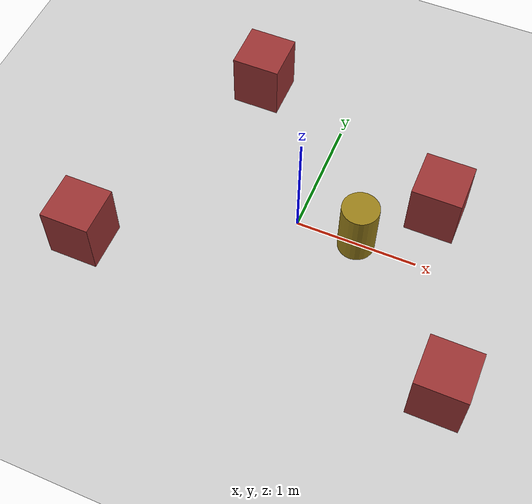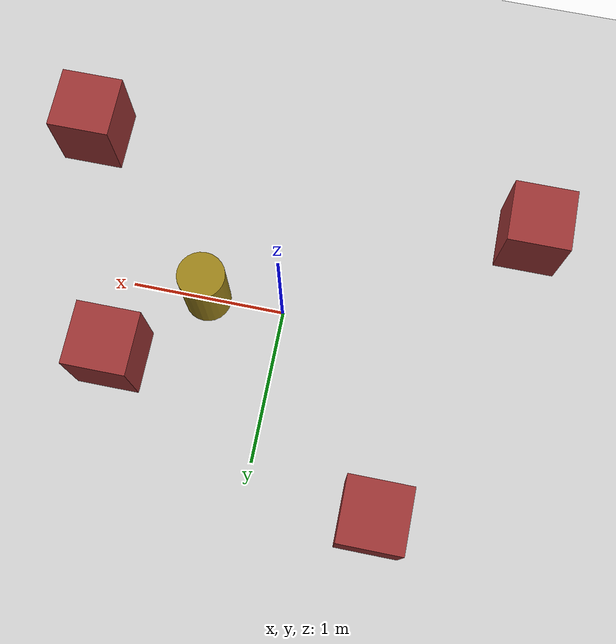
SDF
<?xml version="1.0" ?>
<sdf version="1.6">
  <world name="default">
    <plugin name="gazebo_ros_state" filename="libgazebo_ros_state.so"/>

    <include>
      <uri>model://ground_plane</uri>
    </include>

    <include>
      <uri>model://sun</uri>
    </include>

    <physics type="ode">
      <real_time_update_rate>1000.0</real_time_update_rate>
      <max_step_size>0.001</max_step_size>
      <real_time_factor>1</real_time_factor>
      <ode>
        <solver>
          <type>quick</type>
          <iters>150</iters>
          <precon_iters>0</precon_iters>
          <sor>1.400000</sor>
          <use_dynamic_moi_rescaling>1</use_dynamic_moi_rescaling>
        </solver>
        <constraints>
          <cfm>0.00001</cfm>
          <erp>0.2</erp>
          <contact_max_correcting_vel>2000.000000</contact_max_correcting_vel>
          <contact_surface_layer>0.01000</contact_surface_layer>
        </constraints>
      </ode>
    </physics>

    <model name="obs1">
      <static>true</static>
      <pose>1.0 0.5 0.25 0 0 0</pose>
      <link name="link">
        <collision name="collision">
          <geometry><box><size>0.4 0.4 0.5</size></box></geometry>
        </collision>
        <visual name="visual">
          <geometry><box><size>0.4 0.4 0.5</size></box></geometry>
          <material><ambient>0.6 0.2 0.2 1</ambient></material>
        </visual>
      </link>
    </model>
    <model name="obs2">
      <static>true</static>
      <pose>-0.8 1.2 0.25 0 0 0</pose>
      <link name="link">
        <collision name="collision">
          <geometry><box><size>0.4 0.4 0.5</size></box></geometry>
        </collision>
        <visual name="visual">
          <geometry><box><size>0.4 0.4 0.5</size></box></geometry>
          <material><ambient>0.6 0.2 0.2 1</ambient></material>
        </visual>
      </link>
    </model>
    <model name="obs3">
      <static>true</static>
      <pose>1.5 -1.0 0.25 0 0 0</pose>
      <link name="link">
        <collision name="collision">
          <geometry><box><size>0.4 0.4 0.5</size></box></geometry>
        </collision>
        <visual name="visual">
          <geometry><box><size>0.4 0.4 0.5</size></box></geometry>
          <material><ambient>0.6 0.2 0.2 1</ambient></material>
        </visual>
      </link>
    </model>
    <model name="obs4">
      <static>true</static>
      <pose>-1.5 -0.8 0.25 0 0 0</pose>
      <link name="link">
        <collision name="collision">
          <geometry><box><size>0.4 0.4 0.5</size></box></geometry>
        </collision>
        <visual name="visual">
          <geometry><box><size>0.4 0.4 0.5</size></box></geometry>
          <material><ambient>0.6 0.2 0.2 1</ambient></material>
        </visual>
      </link>
    </model>
    <model name="moving_obstacle">
      <static>false</static>
      <pose>0.5 0.0 0.25 0 0 0</pose>
      <link name="link">
        <collision name="collision">
          <geometry><cylinder><radius>0.15</radius><length>0.5</length></cylinder></geometry>
        </collision>
        <visual name="visual">
          <geometry><cylinder><radius>0.15</radius><length>0.5</length></cylinder></geometry>
          <material><ambient>0.6 0.5 0.1 1</ambient></material>
        </visual>
        <inertial><mass>1.0</mass></inertial>
      </link>
    </model>

  </world>
</sdf>
